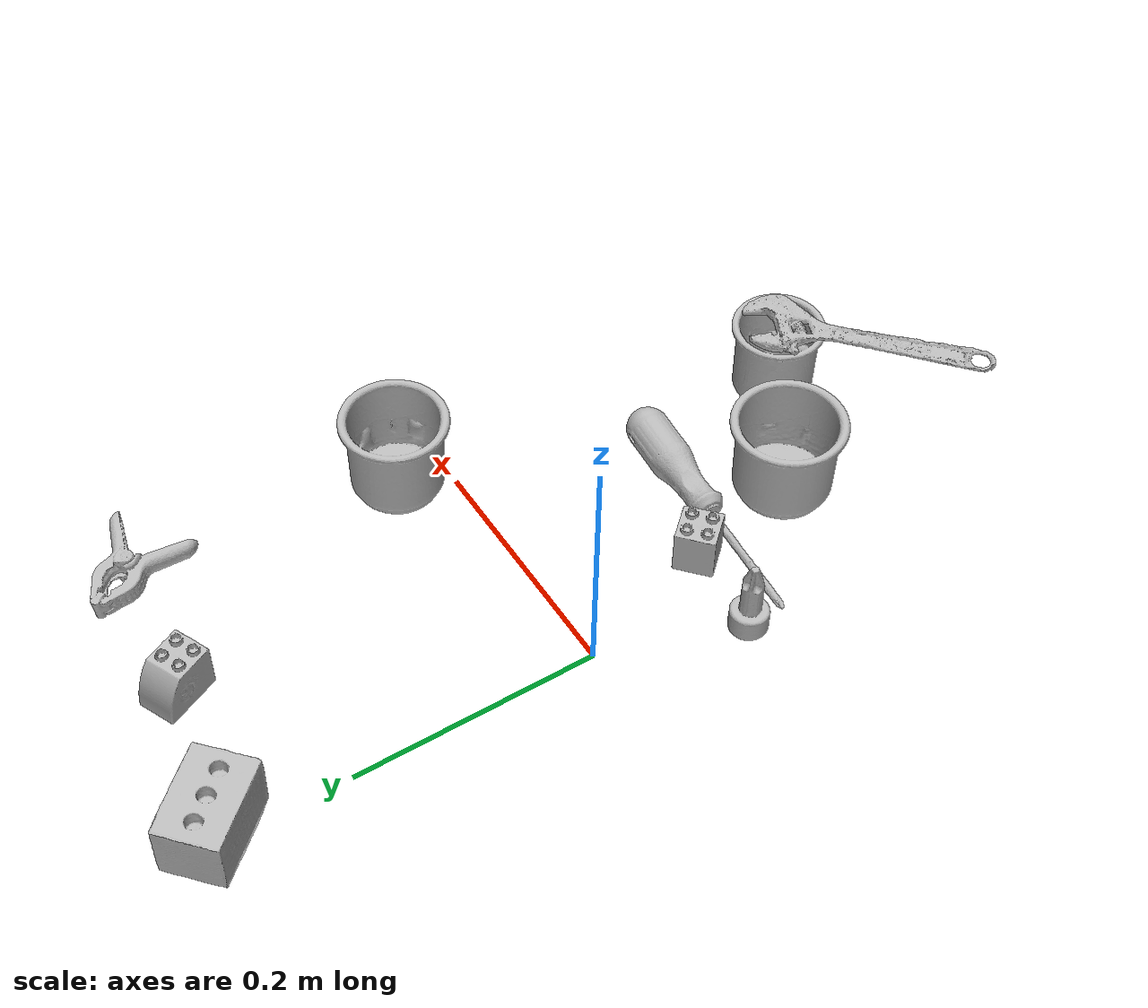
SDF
<sdf version="1.4">
  <world name="default">
    <light name="light1" type="point">
      <pose>0 0 1 0 0 0</pose>
      <diffuse>3 3 3 1</diffuse>
      <specular>3 3 3 1</specular>
    </light>
    <light name="light2" type="point">
      <pose>0 0.5 2 0 0 0</pose>
      <diffuse>1 1 1 1</diffuse>
      <specular>1 1 1 1</specular>
    </light>
    <light name="light3" type="point">
      <pose>0 0.5 2 0 0 0</pose>
      <diffuse>3 3 3 1</diffuse>
      <specular>3 3 3 1</specular>
    </light>
    <scene>
      <ambient>0.7 0.7 0.7</ambient>
    </scene>
    <model name="cup1">
      <link name="link_cup1">
        <collision name="default">
          <geometry>
            <mesh>
              <uri>model://h_cups/collision_meshes/collision.obj</uri>
              <scale>1.0 1.0 1.0</scale>
            </mesh>
          </geometry>
          <surface>
            <friction>
              <ode>
                <mu>0.5</mu>
                <mu2>0.5</mu2>
              </ode>
            </friction>
          <contact>
        <ode>
            <max_vel>0</max_vel>
            <min_depth>0.0001</min_depth>
            <kp>1e8</kp>
        </ode>
    </contact></surface>
        </collision>
        <visual name="default">
          <geometry>
            <mesh>
              <uri>model://h_cups/visual_meshes/visual.dae</uri>
              <scale>1.0 1.0 1.0</scale>
            </mesh>
          </geometry>
        </visual>
        <inertial>
          <mass>0.09017354249954224</mass>
          <pose>-2.702734127524309e-05 0.00023018653155304492 -0.0018405391601845622 -0.024362361674121313 0.06545247408237653 0.12884890922354367</pose>
          <inertia>
            <ixx>0.00011645493</ixx>
            <iyy>0.000115065246</iyy>
            <izz>0.00012212929</izz>
            <ixy>0</ixy>
            <ixz>0</ixz>
            <iyz>0</iyz>
          </inertia>
        </inertial>
      </link>
      <pose>0.062440939247608185 -0.21640294790267944 0.03775791451334953 -4.6255245820961965e-05 -4.08292630358858e-05 2.0758841397960137</pose>
    </model>
    <model name="cup2">
      <link name="link_cup2">
        <collision name="default">
          <geometry>
            <mesh>
              <uri>model://g_cups/collision_meshes/collision.obj</uri>
              <scale>1.0 1.0 1.0</scale>
            </mesh>
          </geometry>
          <surface>
            <friction>
              <ode>
                <mu>0.5</mu>
                <mu2>0.5</mu2>
              </ode>
            </friction>
          <contact>
        <ode>
            <max_vel>0</max_vel>
            <min_depth>0.0001</min_depth>
            <kp>1e8</kp>
        </ode>
    </contact></surface>
        </collision>
        <visual name="default">
          <geometry>
            <mesh>
              <uri>model://g_cups/visual_meshes/visual.dae</uri>
              <scale>1.0 1.0 1.0</scale>
            </mesh>
          </geometry>
        </visual>
        <inertial>
          <mass>0.07892031967639923</mass>
          <pose>-0.0007946275873109698 -4.206384619465098e-05 -0.0021329368464648724 -0.21381953376637775 -0.31410844314425407 0.31119468358147234</pose>
          <inertia>
            <ixx>9.211769e-05</ixx>
            <iyy>9.180432e-05</iyy>
            <izz>9.541806e-05</izz>
            <ixy>0</ixy>
            <ixz>0</ixz>
            <iyz>0</iyz>
          </inertia>
        </inertial>
      </link>
      <pose>0.22371762990951538 0.039349474012851715 0.037202998995780945 -5.678069481263042e-08 2.3467231842238465e-08 -1.8678041149082374</pose>
    </model>
    <model name="cup3">
      <link name="link_cup3">
        <collision name="default">
          <geometry>
            <mesh>
              <uri>model://e_cups/collision_meshes/collision.obj</uri>
              <scale>1.0 1.0 1.0</scale>
            </mesh>
          </geometry>
          <surface>
            <friction>
              <ode>
                <mu>0.5</mu>
                <mu2>0.5</mu2>
              </ode>
            </friction>
          <contact>
        <ode>
            <max_vel>0</max_vel>
            <min_depth>0.0001</min_depth>
            <kp>1e8</kp>
        </ode>
    </contact></surface>
        </collision>
        <visual name="default">
          <geometry>
            <mesh>
              <uri>model://e_cups/visual_meshes/visual.dae</uri>
              <scale>1.0 1.0 1.0</scale>
            </mesh>
          </geometry>
        </visual>
        <inertial>
          <mass>0.08743876963853836</mass>
          <pose>0.0011355745373293757 0.0028797851409763098 -0.0038829741533845663 0.6952398618358687 0.08767880823198544 -0.5235243888876825</pose>
          <inertia>
            <ixx>7.709911e-05</ixx>
            <iyy>8.05796e-05</iyy>
            <izz>7.3715666e-05</izz>
            <ixy>0</ixy>
            <ixz>0</ixz>
            <iyz>0</iyz>
          </inertia>
        </inertial>
      </link>
      <pose>0.15435360372066498 -0.2738180160522461 0.03560185059905052 -0.00014512771126955535 7.88284033404133e-05 -3.05518467272378</pose>
    </model>
    <model name="toy1">
      <link name="link_toy1">
        <collision name="default">
          <geometry>
            <mesh>
              <uri>model://d_lego_duplo/collision_meshes/collision.obj</uri>
              <scale>1.0 1.0 1.0</scale>
            </mesh>
          </geometry>
          <surface>
            <friction>
              <ode>
                <mu>0.5</mu>
                <mu2>0.5</mu2>
              </ode>
            </friction>
          <contact>
        <ode>
            <max_vel>0</max_vel>
            <min_depth>0.0001</min_depth>
            <kp>1e8</kp>
        </ode>
    </contact></surface>
        </collision>
        <visual name="default">
          <geometry>
            <mesh>
              <uri>model://d_lego_duplo/visual_meshes/visual.dae</uri>
              <scale>1.0 1.0 1.0</scale>
            </mesh>
          </geometry>
        </visual>
        <inertial>
          <mass>0.04292278364300728</mass>
          <pose>0.002830562647432089 0.00016366151976399124 0.0008589805802330375 0.08010895821025366 -0.3835521883517419 0.0010296961053417666</pose>
          <inertia>
            <ixx>8.309218e-06</ixx>
            <iyy>1.1793034e-05</iyy>
            <izz>1.1372727e-05</izz>
            <ixy>0</ixy>
            <ixz>0</ixz>
            <iyz>0</iyz>
          </inertia>
        </inertial>
      </link>
      <pose>0.13058815896511078 0.27364176511764526 0.021739963442087173 -7.891528474685231e-06 -2.7446509951413355e-06 -1.143942446067188</pose>
    </model>
    <model name="toy2">
      <link name="link_toy2">
        <collision name="default">
          <geometry>
            <mesh>
              <uri>model://foam_brick/collision_meshes/collision.obj</uri>
              <scale>1.0 1.0 1.0</scale>
            </mesh>
          </geometry>
          <surface>
            <friction>
              <ode>
                <mu>0.5</mu>
                <mu2>0.5</mu2>
              </ode>
            </friction>
          <contact>
        <ode>
            <max_vel>0</max_vel>
            <min_depth>0.0001</min_depth>
            <kp>1e8</kp>
        </ode>
    </contact></surface>
        </collision>
        <visual name="default">
          <geometry>
            <mesh>
              <uri>model://foam_brick/visual_meshes/visual.dae</uri>
              <scale>1.0 1.0 1.0</scale>
            </mesh>
          </geometry>
        </visual>
        <inertial>
          <mass>0.21218973398208618</mass>
          <pose>-0.0002522472059354186 0.00034584320383146405 -0.0002532101352699101 -0.2940188212014215 0.017274433063530492 -0.0007449861184219897</pose>
          <inertia>
            <ixx>9.268843e-05</ixx>
            <iyy>0.00014798183</iyy>
            <izz>0.00014986254</izz>
            <ixy>0</ixy>
            <ixz>0</ixz>
            <iyz>0</iyz>
          </inertia>
        </inertial>
      </link>
      <pose>0.009637268260121346 0.3019721806049347 0.02592279575765133 0.013417032358277129 0.004152412875941046 -0.8416869732823761</pose>
    </model>
    <model name="toy3">
      <link name="link_toy3">
        <collision name="default">
          <geometry>
            <mesh>
              <uri>model://f_lego_duplo/collision_meshes/collision.obj</uri>
              <scale>1.0 1.0 1.0</scale>
            </mesh>
          </geometry>
          <surface>
            <friction>
              <ode>
                <mu>0.5</mu>
                <mu2>0.5</mu2>
              </ode>
            </friction>
          <contact>
        <ode>
            <max_vel>0</max_vel>
            <min_depth>0.0001</min_depth>
            <kp>1e8</kp>
        </ode>
    </contact></surface>
        </collision>
        <visual name="default">
          <geometry>
            <mesh>
              <uri>model://f_lego_duplo/visual_meshes/visual.dae</uri>
              <scale>1.0 1.0 1.0</scale>
            </mesh>
          </geometry>
        </visual>
        <inertial>
          <mass>0.024021470919251442</mass>
          <pose>2.3694197807344608e-05 0.00013393140397965908 0.0018837875686585903 0.02983869554967358 -0.014424868856459862 -0.6756716113514201</pose>
          <inertia>
            <ixx>5.075869e-06</ixx>
            <iyy>5.1210886e-06</iyy>
            <izz>4.4060694e-06</izz>
            <ixy>0</ixy>
            <ixz>0</ixz>
            <iyz>0</iyz>
          </inertia>
        </inertial>
      </link>
      <pose>0.037193663418293 -0.11816651374101639 0.02187047153711319 -1.2045321485407359e-05 5.255862248409354e-05 -0.8345011774474222</pose>
    </model>
    <model name="toy4">
      <link name="link_toy4">
        <collision name="default">
          <geometry>
            <mesh>
              <uri>model://d_toy_airplane/collision_meshes/collision.obj</uri>
              <scale>1.0 1.0 1.0</scale>
            </mesh>
          </geometry>
          <surface>
            <friction>
              <ode>
                <mu>0.5</mu>
                <mu2>0.5</mu2>
              </ode>
            </friction>
          <contact>
        <ode>
            <max_vel>0</max_vel>
            <min_depth>0.0001</min_depth>
            <kp>1e8</kp>
        </ode>
    </contact></surface>
        </collision>
        <visual name="default">
          <geometry>
            <mesh>
              <uri>model://d_toy_airplane/visual_meshes/visual.dae</uri>
              <scale>1.0 1.0 1.0</scale>
            </mesh>
          </geometry>
        </visual>
        <inertial>
          <mass>0.024586454033851624</mass>
          <pose>9.410288475919515e-05 -5.809331560158171e-05 -0.011728096753358841 0.0002662237897190017 0.004679022855495211 0.5193045098973154</pose>
          <inertia>
            <ixx>7.370539e-06</ixx>
            <iyy>7.376099e-06</iyy>
            <izz>2.2252145e-06</izz>
            <ixy>0</ixy>
            <ixz>0</ixz>
            <iyz>0</iyz>
          </inertia>
        </inertial>
      </link>
      <pose>-0.03570299595594406 -0.1138821542263031 0.033339306712150574 0.0001487974209592907 -1.764710454213964e-05 -1.715365476142481</pose>
    </model>
    <model name="hardware1">
      <link name="link_hardware1">
        <collision name="default">
          <geometry>
            <mesh>
              <uri>model://phillips_screwdriver/collision_meshes/collision.obj</uri>
              <scale>1.0 1.0 1.0</scale>
            </mesh>
          </geometry>
          <surface>
            <friction>
              <ode>
                <mu>0.5</mu>
                <mu2>0.5</mu2>
              </ode>
            </friction>
          <contact>
        <ode>
            <max_vel>0</max_vel>
            <min_depth>0.0001</min_depth>
            <kp>1e8</kp>
        </ode>
    </contact></surface>
        </collision>
        <visual name="default">
          <geometry>
            <mesh>
              <uri>model://phillips_screwdriver/visual_meshes/visual.dae</uri>
              <scale>1.0 1.0 1.0</scale>
            </mesh>
          </geometry>
        </visual>
        <inertial>
          <mass>0.10962587594985962</mass>
          <pose>-0.04777182266116142 0.0010362300090491772 -0.00045555492397397757 -0.1572763288958183 0.005850995451121224 -0.002156747064170485</pose>
          <inertia>
            <ixx>1.2879916e-05</ixx>
            <iyy>0.00016149164</iyy>
            <izz>0.00016162884</izz>
            <ixy>0</ixy>
            <ixz>0</ixz>
            <iyz>0</iyz>
          </inertia>
        </inertial>
      </link>
      <pose>0.06740708649158478 -0.1452154666185379 0.015409653075039387 0.065610580617504 0.03756819657573232 3.0864724281003215</pose>
    </model>
    <model name="hardware2">
      <link name="link_hardware2">
        <collision name="default">
          <geometry>
            <mesh>
              <uri>model://adjustable_wrench/collision_meshes/collision.obj</uri>
              <scale>1.0 1.0 1.0</scale>
            </mesh>
          </geometry>
          <surface>
            <friction>
              <ode>
                <mu>0.5</mu>
                <mu2>0.5</mu2>
              </ode>
            </friction>
          <contact>
        <ode>
            <max_vel>0</max_vel>
            <min_depth>0.0001</min_depth>
            <kp>1e8</kp>
        </ode>
    </contact></surface>
        </collision>
        <visual name="default">
          <geometry>
            <mesh>
              <uri>model://adjustable_wrench/visual_meshes/visual.dae</uri>
              <scale>1.0 1.0 1.0</scale>
            </mesh>
          </geometry>
        </visual>
        <inertial>
          <mass>0.02999398298561573</mass>
          <pose>0.03740980848670006 -0.002896887483075261 -0.001114922808483243 -0.014473357351062987 0.006656019865341655 -0.010954188906160397</pose>
          <inertia>
            <ixx>6.138701e-06</ixx>
            <iyy>7.184631e-05</iyy>
            <izz>7.765895e-05</izz>
            <ixy>0</ixy>
            <ixz>0</ixz>
            <iyz>0</iyz>
          </inertia>
        </inertial>
      </link>
      <pose>0.10377725213766098 -0.3167259097099304 0.07416274398565292 0.00594336321775038 -0.001518706842344638 0.7362062321503013</pose>
    </model>
    <model name="hardware3">
      <link name="link_hardware3">
        <collision name="default">
          <geometry>
            <mesh>
              <uri>model://medium_clamp/collision_meshes/collision.obj</uri>
              <scale>1.0 1.0 1.0</scale>
            </mesh>
          </geometry>
          <surface>
            <friction>
              <ode>
                <mu>0.5</mu>
                <mu2>0.5</mu2>
              </ode>
            </friction>
          <contact>
        <ode>
            <max_vel>0</max_vel>
            <min_depth>0.0001</min_depth>
            <kp>1e8</kp>
        </ode>
    </contact></surface>
        </collision>
        <visual name="default">
          <geometry>
            <mesh>
              <uri>model://medium_clamp/visual_meshes/visual.dae</uri>
              <scale>1.0 1.0 1.0</scale>
            </mesh>
          </geometry>
        </visual>
        <inertial>
          <mass>0.038817502558231354</mass>
          <pose>0.005390993785113096 0.0003953237028326839 -0.0001222158462041989 -0.0012269117309439718 0.002584502422387493 0.03820772500943274</pose>
          <inertia>
            <ixx>1.05752815e-05</ixx>
            <iyy>1.539003e-05</iyy>
            <izz>2.3705257e-05</izz>
            <ixy>0</ixy>
            <ixz>0</ixz>
            <iyz>0</iyz>
          </inertia>
        </inertial>
      </link>
      <pose>0.24718035757541656 0.25782129168510437 0.0135340616106987 0.07684483285349583 0.0854422095449337 2.112886177748556</pose>
    </model>
  <physics type="ode">
      <max_contacts>50</max_contacts>
      <ode>
        <solver>
          <type>quick</type>
          <iters>75</iters>
        </solver>
        <constraints>
          <contact_max_correcting_vel>0</contact_max_correcting_vel>
          <contact_surface_layer>0</contact_surface_layer>
        </constraints>
      </ode>
    </physics></world>
</sdf>
